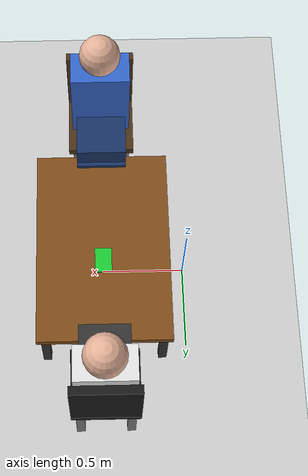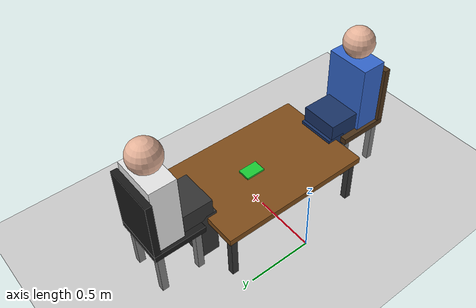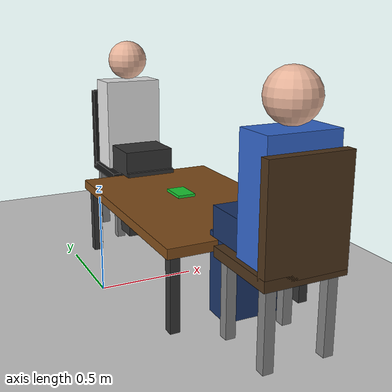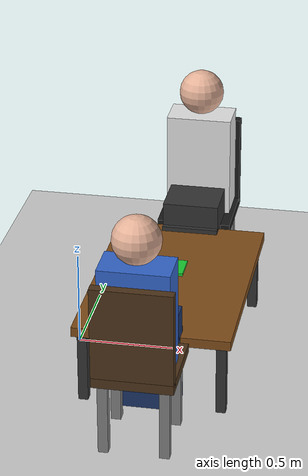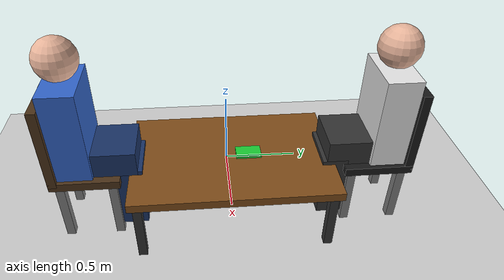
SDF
<?xml version="1.0" ?>
<sdf version="1.8">
  <world name="consultation_world">
    <!-- Physics settings -->
    <physics name="1ms" type="ignored">
      <max_step_size>0.001</max_step_size>
      <real_time_factor>1.0</real_time_factor>
    </physics>
    <plugin filename="gz-sim-physics-system" name="gz::sim::systems::Physics"></plugin>
    <plugin filename="gz-sim-user-commands-system" name="gz::sim::systems::UserCommands"></plugin>
    <plugin filename="gz-sim-scene-broadcaster-system" name="gz::sim::systems::SceneBroadcaster"></plugin>

    <!-- Light -->
    <light type="directional" name="sun">
      <cast_shadows>true</cast_shadows>
      <pose>0 0 10 0 0 0</pose>
      <diffuse>0.8 0.8 0.8 1</diffuse>
      <specular>0.2 0.2 0.2 1</specular>
      <attenuation>
        <range>1000</range>
        <constant>0.9</constant>
        <linear>0.01</linear>
        <quadratic>0.001</quadratic>
      </attenuation>
      <direction>-0.5 0.1 -0.9</direction>
    </light>

    <!-- Ground Plane -->
    <model name="ground_plane">
      <static>true</static>
      <link name="link">
        <collision name="collision">
          <geometry><plane><normal>0 0 1</normal><size>100 100</size></plane></geometry>
          <surface><friction><ode><mu>100</mu><mu2>50</mu2></ode></friction></surface>
        </collision>
        <visual name="visual">
          <geometry><plane><normal>0 0 1</normal><size>100 100</size></plane></geometry>
          <material><ambient>0.8 0.8 0.8 1</ambient><diffuse>0.8 0.8 0.8 1</diffuse><specular>0.8 0.8 0.8 1</specular></material>
        </visual>
      </link>
    </model>

    <!-- Table (Center) -->
    <model name="table">
      <static>true</static>
      <pose>0.5 0 0.4 0 0 0</pose>
      <link name="link">
        <collision name="surface"><geometry><box><size>0.8 1.2 0.05</size></box></geometry></collision>
        <visual name="visual">
          <geometry><box><size>0.8 1.2 0.05</size></box></geometry>
          <material><ambient>0.5 0.3 0.1 1</ambient><diffuse>0.5 0.3 0.1 1</diffuse></material>
        </visual>
        <!-- Table legs -->
        <visual name="leg1_vis"><pose>0.35 0.55 -0.2 0 0 0</pose><geometry><box><size>0.05 0.05 0.4</size></box></geometry><material><ambient>0.2 0.2 0.2 1</ambient></material></visual>
        <visual name="leg2_vis"><pose>-0.35 0.55 -0.2 0 0 0</pose><geometry><box><size>0.05 0.05 0.4</size></box></geometry><material><ambient>0.2 0.2 0.2 1</ambient></material></visual>
        <visual name="leg3_vis"><pose>0.35 -0.55 -0.2 0 0 0</pose><geometry><box><size>0.05 0.05 0.4</size></box></geometry><material><ambient>0.2 0.2 0.2 1</ambient></material></visual>
        <visual name="leg4_vis"><pose>-0.35 -0.55 -0.2 0 0 0</pose><geometry><box><size>0.05 0.05 0.4</size></box></geometry><material><ambient>0.2 0.2 0.2 1</ambient></material></visual>
      </link>
    </model>

    <!-- Doctor (Seated) -->
    <model name="doctor_station">
      <static>true</static>
      <!-- Placed on one side of the table (Y = 0.85), rotated to face the table and patient (-Y direction) -->
      <pose>0.5 0.85 0 0 0 -1.570796</pose>
      <link name="link">
        <!-- Chair -->
        <visual name="chair_seat"><pose>0 0 0.4 0 0 0</pose><geometry><box><size>0.4 0.4 0.05</size></box></geometry><material><ambient>0.1 0.1 0.1 1</ambient></material></visual>
        <visual name="chair_back"><pose>-0.175 0 0.65 0 0 0</pose><geometry><box><size>0.05 0.4 0.5</size></box></geometry><material><ambient>0.1 0.1 0.1 1</ambient></material></visual>
        <visual name="chair_leg1"><pose>0.15 0.15 0.2 0 0 0</pose><geometry><box><size>0.05 0.05 0.4</size></box></geometry><material><ambient>0.5 0.5 0.5 1</ambient></material></visual>
        <visual name="chair_leg2"><pose>0.15 -0.15 0.2 0 0 0</pose><geometry><box><size>0.05 0.05 0.4</size></box></geometry><material><ambient>0.5 0.5 0.5 1</ambient></material></visual>
        <visual name="chair_leg3"><pose>-0.15 0.15 0.2 0 0 0</pose><geometry><box><size>0.05 0.05 0.4</size></box></geometry><material><ambient>0.5 0.5 0.5 1</ambient></material></visual>
        <visual name="chair_leg4"><pose>-0.15 -0.15 0.2 0 0 0</pose><geometry><box><size>0.05 0.05 0.4</size></box></geometry><material><ambient>0.5 0.5 0.5 1</ambient></material></visual>

        <!-- Doctor Body (White Coat) -->
        <visual name="torso"><pose>-0.05 0 0.7 0 0 0</pose><geometry><box><size>0.2 0.35 0.55</size></box></geometry><material><ambient>0.9 0.9 0.9 1</ambient><diffuse>0.9 0.9 0.9 1</diffuse></material></visual>
        <visual name="head"><pose>-0.05 0 1.1 0 0 0</pose><geometry><sphere><radius>0.12</radius></sphere></geometry><material><ambient>0.9 0.7 0.6 1</ambient><diffuse>0.9 0.7 0.6 1</diffuse></material></visual>
        <visual name="thighs"><pose>0.15 0 0.5 0 0 0</pose><geometry><box><size>0.3 0.3 0.15</size></box></geometry><material><ambient>0.2 0.2 0.2 1</ambient></material></visual>
        <visual name="calves"><pose>0.25 0 0.25 0 0 0</pose><geometry><box><size>0.15 0.3 0.4</size></box></geometry><material><ambient>0.2 0.2 0.2 1</ambient></material></visual>
      </link>
    </model>

    <!-- Patient (Seated) -->
    <model name="patient_station">
      <static>true</static>
      <!-- Placed on the opposite side of the table (Y = -0.85), rotated to face the table and doctor (+Y direction) -->
      <pose>0.5 -0.85 0 0 0 1.570796</pose>
      <link name="link">
        <!-- Chair -->
        <visual name="chair_seat"><pose>0 0 0.4 0 0 0</pose><geometry><box><size>0.4 0.4 0.05</size></box></geometry><material><ambient>0.3 0.2 0.1 1</ambient></material></visual>
        <visual name="chair_back"><pose>-0.175 0 0.65 0 0 0</pose><geometry><box><size>0.05 0.4 0.5</size></box></geometry><material><ambient>0.3 0.2 0.1 1</ambient></material></visual>
        <visual name="chair_leg1"><pose>0.15 0.15 0.2 0 0 0</pose><geometry><box><size>0.05 0.05 0.4</size></box></geometry><material><ambient>0.5 0.5 0.5 1</ambient></material></visual>
        <visual name="chair_leg2"><pose>0.15 -0.15 0.2 0 0 0</pose><geometry><box><size>0.05 0.05 0.4</size></box></geometry><material><ambient>0.5 0.5 0.5 1</ambient></material></visual>
        <visual name="chair_leg3"><pose>-0.15 0.15 0.2 0 0 0</pose><geometry><box><size>0.05 0.05 0.4</size></box></geometry><material><ambient>0.5 0.5 0.5 1</ambient></material></visual>
        <visual name="chair_leg4"><pose>-0.15 -0.15 0.2 0 0 0</pose><geometry><box><size>0.05 0.05 0.4</size></box></geometry><material><ambient>0.5 0.5 0.5 1</ambient></material></visual>

        <!-- Patient Body (Blue Clothes) -->
        <visual name="torso"><pose>-0.05 0 0.7 0 0 0</pose><geometry><box><size>0.2 0.35 0.55</size></box></geometry><material><ambient>0.2 0.4 0.8 1</ambient><diffuse>0.2 0.4 0.8 1</diffuse></material></visual>
        <visual name="head"><pose>-0.05 0 1.1 0 0 0</pose><geometry><sphere><radius>0.12</radius></sphere></geometry><material><ambient>0.9 0.7 0.6 1</ambient><diffuse>0.9 0.7 0.6 1</diffuse></material></visual>
        <visual name="thighs"><pose>0.15 0 0.5 0 0 0</pose><geometry><box><size>0.3 0.3 0.15</size></box></geometry><material><ambient>0.1 0.2 0.4 1</ambient></material></visual>
        <visual name="calves"><pose>0.25 0 0.25 0 0 0</pose><geometry><box><size>0.15 0.3 0.4</size></box></geometry><material><ambient>0.1 0.2 0.4 1</ambient></material></visual>
      </link>
    </model>

    <!-- Dynamic Object on Table (e.g., Medicine Box or Medical Record) -->
    <model name="medical_item">
      <pose>0.5 0.1 0.43 0 0 0</pose>
      <link name="link">
        <inertial>
          <mass>0.2</mass>
          <inertia><ixx>0.0001</ixx><iyy>0.0001</iyy><izz>0.0001</izz></inertia>
        </inertial>
        <collision name="collision">
          <geometry><box><size>0.1 0.15 0.02</size></box></geometry>
          <surface><friction><ode><mu>1.0</mu><mu2>1.0</mu2></ode></friction></surface>
        </collision>
        <visual name="visual">
          <geometry><box><size>0.1 0.15 0.02</size></box></geometry>
          <material><ambient>0.1 0.8 0.2 1</ambient><diffuse>0.1 0.8 0.2 1</diffuse></material>
        </visual>
      </link>
    </model>

  </world>
</sdf>
